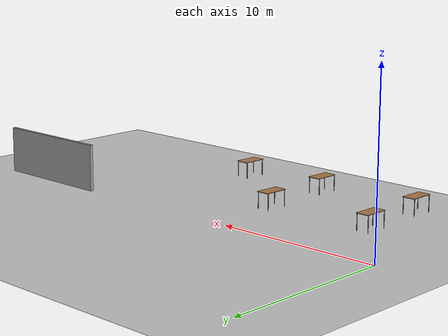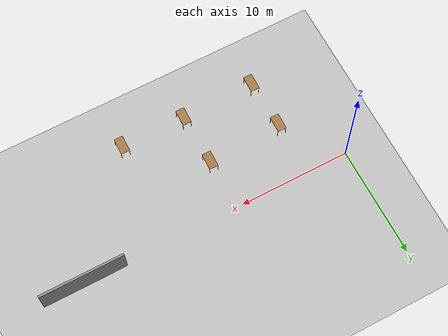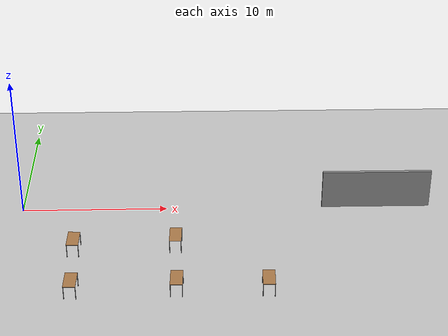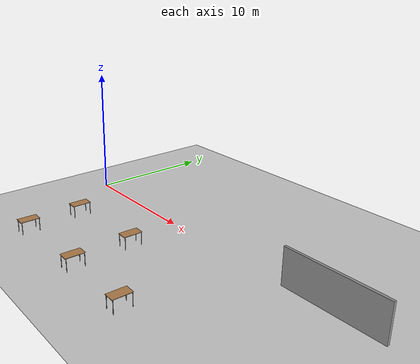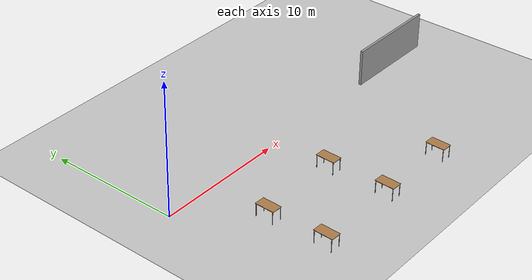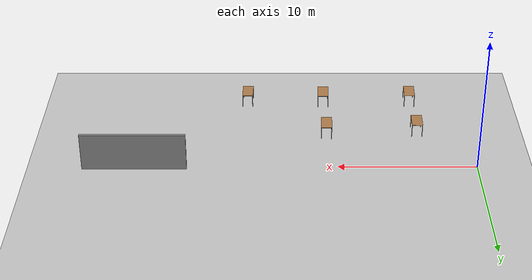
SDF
<sdf version="1.6">
 <world name="default">
  <model name="ground_plane">
   <static>1</static>
   <link name="link">
    <collision name="collision">
     <geometry><plane><normal>0 0 1</normal><size>100 100</size></plane></geometry>
     <surface>
      <contact><collide_bitmask>65535</collide_bitmask></contact>
      <friction><ode><mu>100</mu><mu2>50</mu2></ode></friction>
     </surface>
    </collision>
    <visual name="visual">
     <cast_shadows>0</cast_shadows>
     <geometry><plane><normal>0 0 1</normal><size>100 100</size></plane></geometry>
     <material>
      <script><uri>file://media/materials/scripts/gazebo.material</uri><name>Gazebo/Grey</name></script>
     </material>
    </visual>
   </link>
  </model>
  <model name="table_0">
   <static>1</static>
   <link name="link">
    <collision name="surface">
     <pose>0 0 1 0 -0 0</pose>
     <geometry><box><size>1.5 0.8 0.03</size></box></geometry>
     <surface><friction><ode><mu>0.6</mu><mu2>0.6</mu2></ode></friction></surface>
    </collision>
    <visual name="visual1">
     <pose>0 0 1 0 -0 0</pose>
     <geometry><box><size>1.5 0.8 0.03</size></box></geometry>
     <material>
      <script><uri>file://media/materials/scripts/gazebo.material</uri><name>Gazebo/Wood</name></script>
     </material>
    </visual>
    <collision name="front_left_leg">
     <pose>0.68 0.38 0.5 0 -0 0</pose>
     <geometry><cylinder><radius>0.02</radius><length>1</length></cylinder></geometry>
    </collision>
    <visual name="front_left_leg">
     <pose>0.68 0.38 0.5 0 -0 0</pose>
     <geometry><cylinder><radius>0.02</radius><length>1</length></cylinder></geometry>
     <material>
      <script><uri>file://media/materials/scripts/gazebo.material</uri><name>Gazebo/Grey</name></script>
     </material>
    </visual>
    <collision name="front_right_leg">
     <pose>0.68 -0.38 0.5 0 -0 0</pose>
     <geometry><cylinder><radius>0.02</radius><length>1</length></cylinder></geometry>
    </collision>
    <visual name="front_right_leg">
     <pose>0.68 -0.38 0.5 0 -0 0</pose>
     <geometry><cylinder><radius>0.02</radius><length>1</length></cylinder></geometry>
     <material>
      <script><uri>file://media/materials/scripts/gazebo.material</uri><name>Gazebo/Grey</name></script>
     </material>
    </visual>
    <collision name="back_right_leg">
     <pose>-0.68 -0.38 0.5 0 -0 0</pose>
     <geometry><cylinder><radius>0.02</radius><length>1</length></cylinder></geometry>
    </collision>
    <visual name="back_right_leg">
     <pose>-0.68 -0.38 0.5 0 -0 0</pose>
     <geometry><cylinder><radius>0.02</radius><length>1</length></cylinder></geometry>
     <material>
      <script><uri>file://media/materials/scripts/gazebo.material</uri><name>Gazebo/Grey</name></script>
     </material>
    </visual>
    <collision name="back_left_leg">
     <pose>-0.68 0.38 0.5 0 -0 0</pose>
     <geometry><cylinder><radius>0.02</radius><length>1</length></cylinder></geometry>
    </collision>
    <visual name="back_left_leg">
     <pose>-0.68 0.38 0.5 0 -0 0</pose>
     <geometry><cylinder><radius>0.02</radius><length>1</length></cylinder></geometry>
     <material>
      <script><uri>file://media/materials/scripts/gazebo.material</uri><name>Gazebo/Grey</name></script>
     </material>
    </visual>
   </link>
   <pose>16.6404 -9.26334 0 0 -0 1.54682</pose>
  </model>
  <model name="grey_wall">
   <static>1</static>
   <link name="link">
    <pose>0 0 1.4 0 -0 0</pose>
    <collision name="collision"><geometry><box><size>7.5 0.2 2.8</size></box></geometry></collision>
    <visual name="visual">
     <cast_shadows>0</cast_shadows>
     <geometry><box><size>7.5 0.2 2.8</size></box></geometry>
     <material>
      <script>
       <uri>model://grey_wall/materials/scripts</uri>
       <uri>model://grey_wall/materials/textures</uri>
       <name>vrc/grey_wall</name>
      </script>
     </material>
    </visual>
   </link>
   <pose>24.5737 0.166577 0 0 -0 0</pose>
  </model>
  <model name="table_0_clone">
   <static>1</static>
   <link name="link">
    <collision name="surface">
     <pose>0 0 1 0 -0 0</pose>
     <geometry><box><size>1.5 0.8 0.03</size></box></geometry>
     <surface><friction><ode><mu>0.6</mu><mu2>0.6</mu2></ode></friction></surface>
    </collision>
    <visual name="visual1">
     <pose>0 0 1 0 -0 0</pose>
     <geometry><box><size>1.5 0.8 0.03</size></box></geometry>
     <material>
      <script><uri>file://media/materials/scripts/gazebo.material</uri><name>Gazebo/Wood</name></script>
     </material>
    </visual>
    <collision name="front_left_leg">
     <pose>0.68 0.38 0.5 0 -0 0</pose>
     <geometry><cylinder><radius>0.02</radius><length>1</length></cylinder></geometry>
    </collision>
    <visual name="front_left_leg">
     <pose>0.68 0.38 0.5 0 -0 0</pose>
     <geometry><cylinder><radius>0.02</radius><length>1</length></cylinder></geometry>
     <material>
      <script><uri>file://media/materials/scripts/gazebo.material</uri><name>Gazebo/Grey</name></script>
     </material>
    </visual>
    <collision name="front_right_leg">
     <pose>0.68 -0.38 0.5 0 -0 0</pose>
     <geometry><cylinder><radius>0.02</radius><length>1</length></cylinder></geometry>
    </collision>
    <visual name="front_right_leg">
     <pose>0.68 -0.38 0.5 0 -0 0</pose>
     <geometry><cylinder><radius>0.02</radius><length>1</length></cylinder></geometry>
     <material>
      <script><uri>file://media/materials/scripts/gazebo.material</uri><name>Gazebo/Grey</name></script>
     </material>
    </visual>
    <collision name="back_right_leg">
     <pose>-0.68 -0.38 0.5 0 -0 0</pose>
     <geometry><cylinder><radius>0.02</radius><length>1</length></cylinder></geometry>
    </collision>
    <visual name="back_right_leg">
     <pose>-0.68 -0.38 0.5 0 -0 0</pose>
     <geometry><cylinder><radius>0.02</radius><length>1</length></cylinder></geometry>
     <material>
      <script><uri>file://media/materials/scripts/gazebo.material</uri><name>Gazebo/Grey</name></script>
     </material>
    </visual>
    <collision name="back_left_leg">
     <pose>-0.68 0.38 0.5 0 -0 0</pose>
     <geometry><cylinder><radius>0.02</radius><length>1</length></cylinder></geometry>
    </collision>
    <visual name="back_left_leg">
     <pose>-0.68 0.38 0.5 0 -0 0</pose>
     <geometry><cylinder><radius>0.02</radius><length>1</length></cylinder></geometry>
     <material>
      <script><uri>file://media/materials/scripts/gazebo.material</uri><name>Gazebo/Grey</name></script>
     </material>
    </visual>
   </link>
   <pose>10.8123 -9.19045 0 0 -0 1.54682</pose>
  </model>
  <model name="table_0_clone_0">
   <static>1</static>
   <link name="link">
    <collision name="surface">
     <pose>0 0 1 0 -0 0</pose>
     <geometry><box><size>1.5 0.8 0.03</size></box></geometry>
     <surface><friction><ode><mu>0.6</mu><mu2>0.6</mu2></ode></friction></surface>
    </collision>
    <visual name="visual1">
     <pose>0 0 1 0 -0 0</pose>
     <geometry><box><size>1.5 0.8 0.03</size></box></geometry>
     <material>
      <script><uri>file://media/materials/scripts/gazebo.material</uri><name>Gazebo/Wood</name></script>
     </material>
    </visual>
    <collision name="front_left_leg">
     <pose>0.68 0.38 0.5 0 -0 0</pose>
     <geometry><cylinder><radius>0.02</radius><length>1</length></cylinder></geometry>
    </collision>
    <visual name="front_left_leg">
     <pose>0.68 0.38 0.5 0 -0 0</pose>
     <geometry><cylinder><radius>0.02</radius><length>1</length></cylinder></geometry>
     <material>
      <script><uri>file://media/materials/scripts/gazebo.material</uri><name>Gazebo/Grey</name></script>
     </material>
    </visual>
    <collision name="front_right_leg">
     <pose>0.68 -0.38 0.5 0 -0 0</pose>
     <geometry><cylinder><radius>0.02</radius><length>1</length></cylinder></geometry>
    </collision>
    <visual name="front_right_leg">
     <pose>0.68 -0.38 0.5 0 -0 0</pose>
     <geometry><cylinder><radius>0.02</radius><length>1</length></cylinder></geometry>
     <material>
      <script><uri>file://media/materials/scripts/gazebo.material</uri><name>Gazebo/Grey</name></script>
     </material>
    </visual>
    <collision name="back_right_leg">
     <pose>-0.68 -0.38 0.5 0 -0 0</pose>
     <geometry><cylinder><radius>0.02</radius><length>1</length></cylinder></geometry>
    </collision>
    <visual name="back_right_leg">
     <pose>-0.68 -0.38 0.5 0 -0 0</pose>
     <geometry><cylinder><radius>0.02</radius><length>1</length></cylinder></geometry>
     <material>
      <script><uri>file://media/materials/scripts/gazebo.material</uri><name>Gazebo/Grey</name></script>
     </material>
    </visual>
    <collision name="back_left_leg">
     <pose>-0.68 0.38 0.5 0 -0 0</pose>
     <geometry><cylinder><radius>0.02</radius><length>1</length></cylinder></geometry>
    </collision>
    <visual name="back_left_leg">
     <pose>-0.68 0.38 0.5 0 -0 0</pose>
     <geometry><cylinder><radius>0.02</radius><length>1</length></cylinder></geometry>
     <material>
      <script><uri>file://media/materials/scripts/gazebo.material</uri><name>Gazebo/Grey</name></script>
     </material>
    </visual>
   </link>
   <pose>4.13003 -9.2976 0 0 -0 1.54682</pose>
  </model>
  <model name="table_0_clone_3">
   <static>1</static>
   <link name="link">
    <collision name="surface">
     <pose>0 0 1 0 -0 0</pose>
     <geometry><box><size>1.5 0.8 0.03</size></box></geometry>
     <surface><friction><ode><mu>0.6</mu><mu2>0.6</mu2></ode></friction></surface>
    </collision>
    <visual name="visual1">
     <pose>0 0 1 0 -0 0</pose>
     <geometry><box><size>1.5 0.8 0.03</size></box></geometry>
     <material>
      <script><uri>file://media/materials/scripts/gazebo.material</uri><name>Gazebo/Wood</name></script>
     </material>
    </visual>
    <collision name="front_left_leg">
     <pose>0.68 0.38 0.5 0 -0 0</pose>
     <geometry><cylinder><radius>0.02</radius><length>1</length></cylinder></geometry>
    </collision>
    <visual name="front_left_leg">
     <pose>0.68 0.38 0.5 0 -0 0</pose>
     <geometry><cylinder><radius>0.02</radius><length>1</length></cylinder></geometry>
     <material>
      <script><uri>file://media/materials/scripts/gazebo.material</uri><name>Gazebo/Grey</name></script>
     </material>
    </visual>
    <collision name="front_right_leg">
     <pose>0.68 -0.38 0.5 0 -0 0</pose>
     <geometry><cylinder><radius>0.02</radius><length>1</length></cylinder></geometry>
    </collision>
    <visual name="front_right_leg">
     <pose>0.68 -0.38 0.5 0 -0 0</pose>
     <geometry><cylinder><radius>0.02</radius><length>1</length></cylinder></geometry>
     <material>
      <script><uri>file://media/materials/scripts/gazebo.material</uri><name>Gazebo/Grey</name></script>
     </material>
    </visual>
    <collision name="back_right_leg">
     <pose>-0.68 -0.38 0.5 0 -0 0</pose>
     <geometry><cylinder><radius>0.02</radius><length>1</length></cylinder></geometry>
    </collision>
    <visual name="back_right_leg">
     <pose>-0.68 -0.38 0.5 0 -0 0</pose>
     <geometry><cylinder><radius>0.02</radius><length>1</length></cylinder></geometry>
     <material>
      <script><uri>file://media/materials/scripts/gazebo.material</uri><name>Gazebo/Grey</name></script>
     </material>
    </visual>
    <collision name="back_left_leg">
     <pose>-0.68 0.38 0.5 0 -0 0</pose>
     <geometry><cylinder><radius>0.02</radius><length>1</length></cylinder></geometry>
    </collision>
    <visual name="back_left_leg">
     <pose>-0.68 0.38 0.5 0 -0 0</pose>
     <geometry><cylinder><radius>0.02</radius><length>1</length></cylinder></geometry>
     <material>
      <script><uri>file://media/materials/scripts/gazebo.material</uri><name>Gazebo/Grey</name></script>
     </material>
    </visual>
   </link>
   <pose>3.9388 -4.84343 0 0 -0 1.54682</pose>
  </model>
  <model name="table_0_clone_4">
   <static>1</static>
   <link name="link">
    <collision name="surface">
     <pose>0 0 1 0 -0 0</pose>
     <geometry><box><size>1.5 0.8 0.03</size></box></geometry>
     <surface><friction><ode><mu>0.6</mu><mu2>0.6</mu2></ode></friction></surface>
    </collision>
    <visual name="visual1">
     <pose>0 0 1 0 -0 0</pose>
     <geometry><box><size>1.5 0.8 0.03</size></box></geometry>
     <material>
      <script><uri>file://media/materials/scripts/gazebo.material</uri><name>Gazebo/Wood</name></script>
     </material>
    </visual>
    <collision name="front_left_leg">
     <pose>0.68 0.38 0.5 0 -0 0</pose>
     <geometry><cylinder><radius>0.02</radius><length>1</length></cylinder></geometry>
    </collision>
    <visual name="front_left_leg">
     <pose>0.68 0.38 0.5 0 -0 0</pose>
     <geometry><cylinder><radius>0.02</radius><length>1</length></cylinder></geometry>
     <material>
      <script><uri>file://media/materials/scripts/gazebo.material</uri><name>Gazebo/Grey</name></script>
     </material>
    </visual>
    <collision name="front_right_leg">
     <pose>0.68 -0.38 0.5 0 -0 0</pose>
     <geometry><cylinder><radius>0.02</radius><length>1</length></cylinder></geometry>
    </collision>
    <visual name="front_right_leg">
     <pose>0.68 -0.38 0.5 0 -0 0</pose>
     <geometry><cylinder><radius>0.02</radius><length>1</length></cylinder></geometry>
     <material>
      <script><uri>file://media/materials/scripts/gazebo.material</uri><name>Gazebo/Grey</name></script>
     </material>
    </visual>
    <collision name="back_right_leg">
     <pose>-0.68 -0.38 0.5 0 -0 0</pose>
     <geometry><cylinder><radius>0.02</radius><length>1</length></cylinder></geometry>
    </collision>
    <visual name="back_right_leg">
     <pose>-0.68 -0.38 0.5 0 -0 0</pose>
     <geometry><cylinder><radius>0.02</radius><length>1</length></cylinder></geometry>
     <material>
      <script><uri>file://media/materials/scripts/gazebo.material</uri><name>Gazebo/Grey</name></script>
     </material>
    </visual>
    <collision name="back_left_leg">
     <pose>-0.68 0.38 0.5 0 -0 0</pose>
     <geometry><cylinder><radius>0.02</radius><length>1</length></cylinder></geometry>
    </collision>
    <visual name="back_left_leg">
     <pose>-0.68 0.38 0.5 0 -0 0</pose>
     <geometry><cylinder><radius>0.02</radius><length>1</length></cylinder></geometry>
     <material>
      <script><uri>file://media/materials/scripts/gazebo.material</uri><name>Gazebo/Grey</name></script>
     </material>
    </visual>
   </link>
   <pose>10.6876 -4.5176 0 0 -0 1.54682</pose>
  </model>
 </world>
</sdf>
